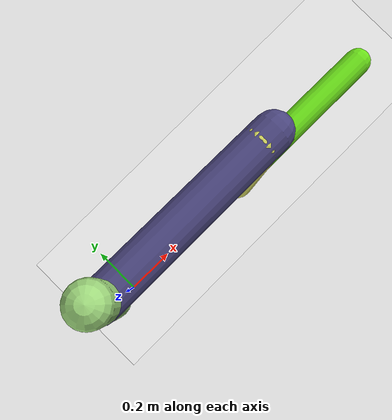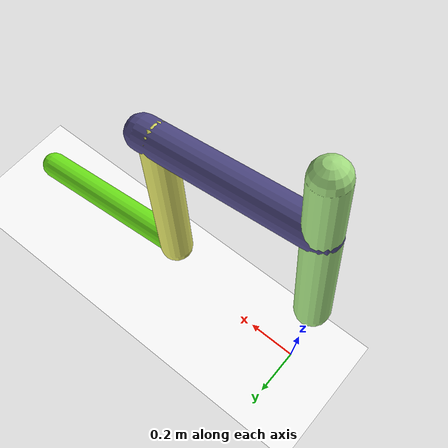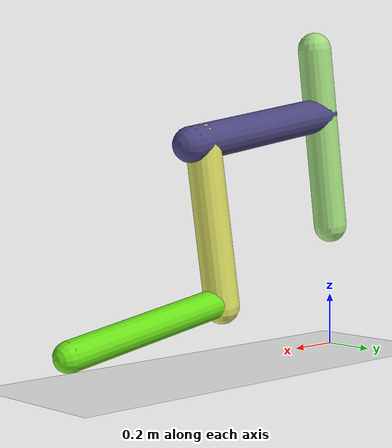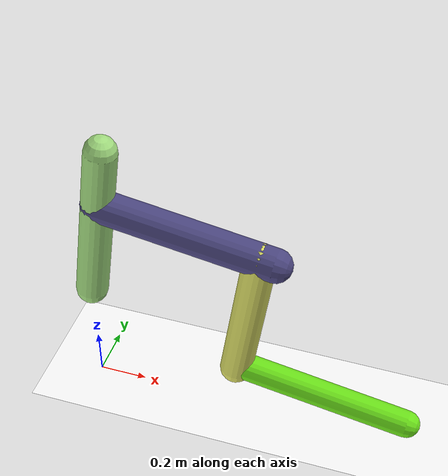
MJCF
<mujoco model="morphology">
    <option timestep="0.01" />
    <default>
        <default class="/" />
    </default>
    <asset>
        <texture name="texplane" type="2d" builtin="checker" rgb1="0.1 0.2 0.3" rgb2="0.2 0.3 0.4"
            width="300" height="300" />
        <material name="MatPlane" class="/" texture="texplane" texrepeat="20 20" specular="1"
            shininess="1" reflectance="0.5" />
    </asset>
    <worldbody>
        <light name="//unnamed_light_0" class="/" directional="true" pos="0 0 1.5" dir="0 0 -1.3"
            cutoff="1e+02" exponent="1" diffuse="1 1 1" specular="0.1 0.1 0.1" />
        <geom name="ground" class="/" type="plane" size="15 15 0.5" material="MatPlane"
            rgba="1 1 1 1" />
        <body name="body" pos="0 0 0.48">
            <geom name="geom0" class="/" type="capsule" contype="1" conaffinity="1" condim="3"
                size="0.066" rgba="0.64 0.87 0.5 1" friction="0.4 0.1 0.1" fromto="0 0 0 0.1 0 0.71" />
            <body name="body1" pos="0.064 0 0.45">
                <geom name="geom1" class="/" type="capsule" contype="1" conaffinity="1" condim="3"
                    size="0.068" rgba="0.3 0.28 0.51 1" friction="0.4 0.1 0.1"
                    fromto="0 0 0 0.71 0 -0.11" />
                <body name="body2" pos="0.65 0 -0.099">
                    <geom name="geom2" class="/" type="capsule" contype="1" conaffinity="1"
                        condim="3" size="0.067" rgba="0.86 0.87 0.39 1" friction="0.4 0.1 0.1"
                        fromto="0 0 0 -0.099 0 -0.62" />
                    <body name="body3" pos="-0.097 0 -0.6">
                        <geom name="geom3" class="/" type="capsule" contype="1" conaffinity="1"
                            condim="3" size="0.056" rgba="0.43 0.9 0.1 1" friction="0.4 0.1 0.1"
                            fromto="0 0 0 0.72 0 -0.12" />
                        <joint name="joint3" class="/" type="hinge" axis="0 1 0" limited="true"
                            stiffness="20" range="-69 69" armature="0.1" damping="2" />
                    </body>
                    <joint name="joint2" class="/" type="hinge" axis="0 1 0" limited="true"
                        stiffness="20" range="-56 56" armature="0.1" damping="2" />
                </body>
                <joint name="joint1" class="/" type="hinge" axis="0 1 0" limited="true"
                    stiffness="20" range="-32 32" armature="0.1" damping="2" />
            </body>
            <joint name="rootx" class="/" type="slide" axis="1 0 0" limited="false" stiffness="0"
                armature="0" damping="0" />
            <joint name="rootz" class="/" type="slide" axis="0 0 1" limited="false" stiffness="0"
                armature="0" damping="0" />
            <joint name="rooty" class="/" type="hinge" axis="0 1 0" limited="false" stiffness="0"
                armature="0" damping="0" />
        </body>
    </worldbody>
    <actuator>
        <motor name="motor3" class="/" ctrllimited="true" ctrlrange="-1 1" gear="1.2e+02"
            joint="joint3" />
        <motor name="motor2" class="/" ctrllimited="true" ctrlrange="-1 1" gear="1.8e+02"
            joint="joint2" />
        <motor name="motor1" class="/" ctrllimited="true" ctrlrange="-1 1" gear="1.2e+02"
            joint="joint1" />
    </actuator>
    <sensor>
        <subtreelinvel name="velocity" body="body" />
    </sensor>
</mujoco>
